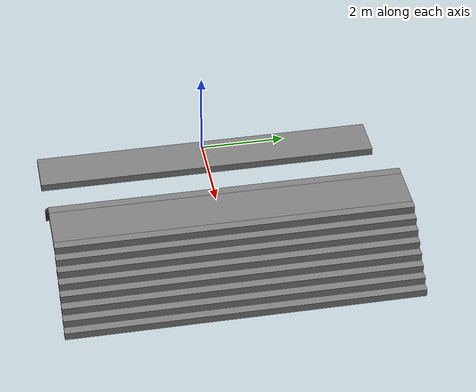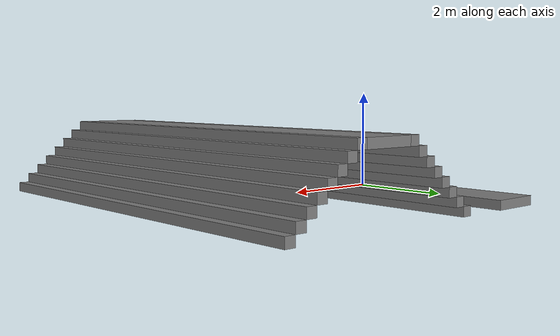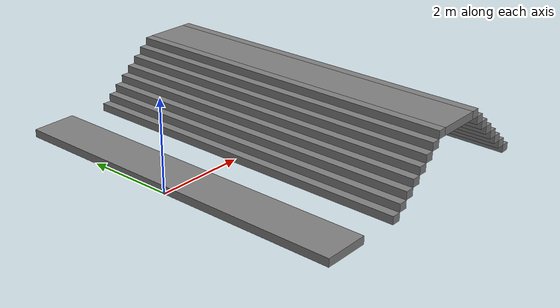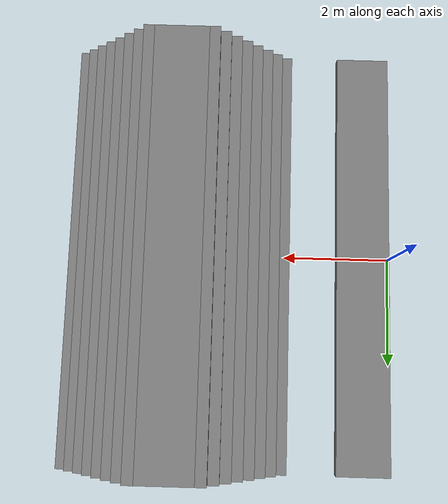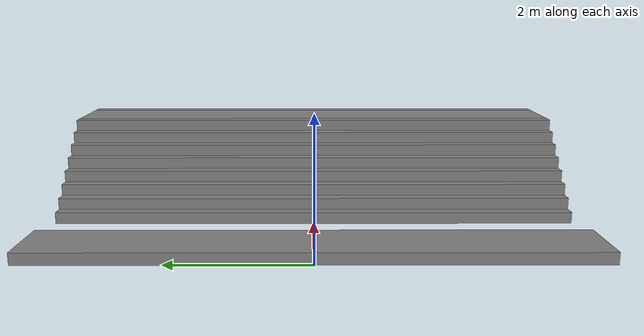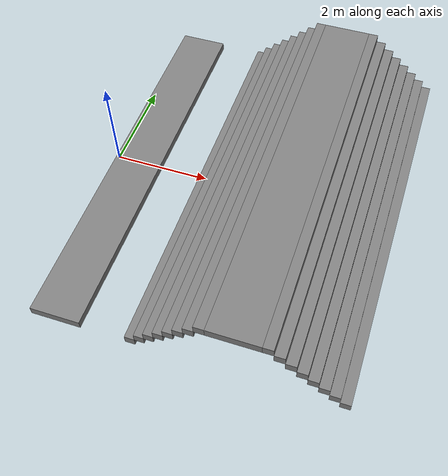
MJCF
<mujoco model="prototype_model">
  <worldbody>
      <geom pos="0.5 0 0.0875" size="0.5 4 0.0875" type="box"/>
      <geom pos="2 0 0.0875" size="0.1 4 0.0875" type="box"/>
      <geom pos="2.2 0 0.2625" size="0.1 4 0.0875" type="box"/>
      <geom pos="2.4 0 0.4375" size="0.1 4 0.0875" type="box"/>
      <geom pos="2.6 0 0.6125" size="0.1 4 0.0875" type="box"/>
      <geom pos="2.8 0 0.7875" size="0.1 4 0.0875" type="box"/>
      <geom pos="3.0 0 0.9625" size="0.1 4 0.0875" type="box"/>
      <geom pos="3.2 0 1.1375" size="0.1 4 0.0875" type="box"/>
      <geom pos="3.4 0 1.3125" size="0.1 4 0.0875" type="box"/>
      <geom pos="4.0 0 1.3125" size="0.5 4 0.0875" type="box"/>
      <geom pos="4.6 0 1.3125" size="0.1 4 0.0875" type="box"/>
      <geom pos="4.8 0 1.1375" size="0.1 4 0.0875" type="box"/>
      <geom pos="5.0 0 0.9625" size="0.1 4 0.0875" type="box"/>
      <geom pos="5.2 0 0.7875" size="0.1 4 0.0875" type="box"/>
      <geom pos="5.4 0 0.6125" size="0.1 4 0.0875" type="box"/>
      <geom pos="5.6 0 0.4375" size="0.1 4 0.0875" type="box"/>
      <geom pos="5.8 0 0.2625" size="0.1 4 0.0875" type="box"/>
      <geom pos="6 0 0.0875" size="0.1 4 0.0875" type="box"/>

  </worldbody>
</mujoco>
